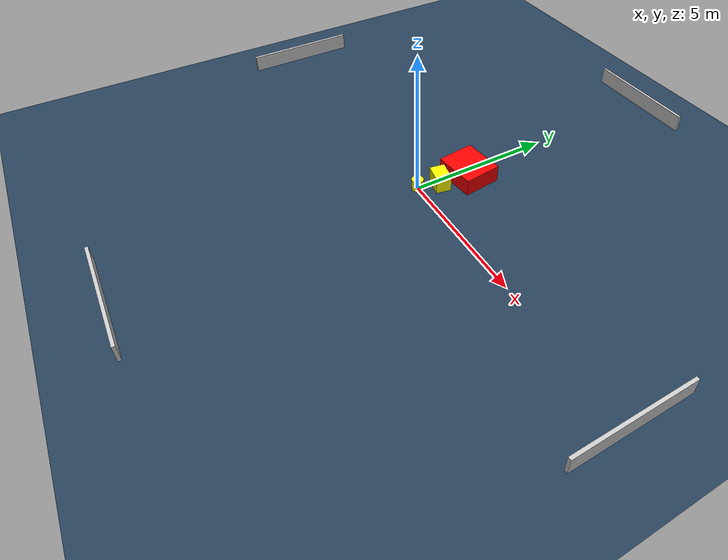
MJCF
<?xml version="1.0" ?>
<mujoco model="generated_environment">
  <option timestep="0.01" integrator="RK4" cone="elliptic"/>
  <default>
    <geom density="1"/>
  </default>
  <asset>
    <texture builtin="gradient" height="3072" name="skybox" rgb1="0.3 0.5 0.7" rgb2="0 0 0" type="skybox" width="512"/>
    <texture builtin="checker" height="300" name="groundplane" rgb1="0.2 0.3 0.4" rgb2="0.1 0.2 0.3" type="2d" width="300"/>
    <material name="groundplane" reflectance="0.2" texrepeat="5 5" texture="groundplane"/>
  </asset>
  <worldbody>
    <light dir="0 0 -1" directional="true" pos="0 0 1.5"/>
    <geom condim="3" friction="0.5 0.005 0.001" material="groundplane" name="floor" pos="0 0 0" size="0 0 0.05" type="plane"/>
    <body name="walls">
      <geom name="wall_1" condim="4" pos="-10.0 0.0 0.3" rgba="0.800000011920929 0.800000011920929 0.800000011920929 1.0" size="0.05 2.0 0.3" type="box"/>
      <geom name="wall_2" condim="4" pos="10.0 0.0 0.3" rgba="0.800000011920929 0.800000011920929 0.800000011920929 1.0" size="0.05 2.0 0.3" type="box"/>
      <geom name="wall_3" condim="4" pos="0.0 -10.0 0.3" rgba="0.800000011920929 0.800000011920929 0.800000011920929 1.0" size="2.0 0.05 0.3" type="box"/>
      <geom name="wall_4" condim="4" pos="0.0 10.0 0.3" rgba="0.800000011920929 0.800000011920929 0.800000011920929 1.0" size="2.0 0.05 0.3" type="box"/>
    </body>
    <body name="robot">
      <joint name="joint_x" type="slide" pos="0 0 0" axis="1 0 0"/>
      <joint name="joint_y" type="slide" pos="0 0 0" axis="0 1 0"/>
      <geom name="robot" type="cylinder" pos="0.0 0.0 0.2" size="0.2 0.2 0.0" mass="5.0" friction="1.0 0.005 0.0001" condim="4" rgba="1.0 1.0 0.0 1.0"/>
    </body>
    <body name="obstacle_1_movable">
      <geom name="obstacle_1_movable" condim="4" pos="0.2605456045231322 0.7212382411469709 0.3" euler="0 0 259.4782353924682" friction="0.0 0.005 0.001" rgba="1.0 1.0 0.0 1.0" size="0.2614704361168956 0.3291510378027441 0.3" type="box" mass="0.1"/>
      <joint type="free"/>
    </body>
    <body name="obstacle_2_static">
      <geom name="obstacle_2_static" condim="4" pos="0.32993282264183454 1.8089346613394797 0.3" euler="0 0 6.368431587910801" friction="0.0 0.005 0.001" rgba="1.0 0.0 0.0 1.0" size="0.7367298424165698 0.6578878183236655 0.3" type="box"/>
    </body>
  </worldbody>
  <actuator>
    <motor name="actuator_x" joint="joint_x" gear="1" ctrlrange="-1 1"/>
    <motor name="actuator_y" joint="joint_y" gear="1" ctrlrange="-1 1"/>
  </actuator>
</mujoco>
